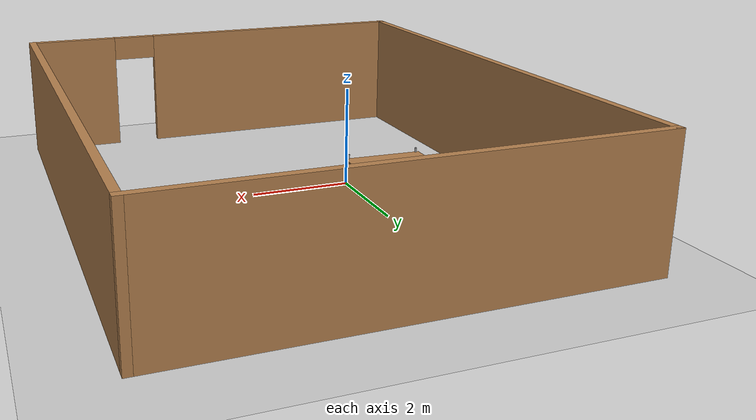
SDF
<sdf version="1.7">
 <world name="default">
  <light name="sun" type="directional">
   <pose>0 0 10 0 -0 0</pose>
   <diffuse>0.8 0.8 0.8 1</diffuse>
   <specular>0.2 0.2 0.2 1</specular>
   <attenuation>
    <range>1000</range>
    <constant>0.9</constant>
    <linear>0.01</linear>
    <quadratic>0.001</quadratic>
   </attenuation>
   <direction>-0.5 0.1 -0.9</direction>
   <spot><inner_angle>0</inner_angle><outer_angle>0</outer_angle><falloff>0</falloff></spot>
  </light>
  <model name="ground_plane">
   <static>1</static>
   <link name="link">
    <collision name="collision">
     <geometry><plane><normal>0 0 1</normal><size>100 100</size></plane></geometry>
     <surface><friction><ode><mu>100</mu><mu2>50</mu2></ode></friction></surface>
    </collision>
    <visual name="visual">
     <cast_shadows>0</cast_shadows>
     <geometry><plane><normal>0 0 1</normal><size>100 100</size></plane></geometry>
     <material>
      <script><uri>file://media/materials/scripts/gazebo.material</uri><name>Gazebo/Grey</name></script>
     </material>
    </visual>
   </link>
  </model>
  <gravity>0 0 -9.8</gravity>
  <magnetic_field>6e-06 2.3e-05 -4.2e-05</magnetic_field>
  <atmosphere type="adiabatic"/>
  <physics type="ode">
   <max_step_size>0.001</max_step_size>
   <real_time_factor>1</real_time_factor>
   <real_time_update_rate>1000</real_time_update_rate>
  </physics>
  <scene><ambient>0.4 0.4 0.4 1</ambient><background>0.7 0.7 0.7 1</background><shadows>1</shadows></scene>
  <audio><device>default</device></audio>
  <spherical_coordinates>
   <surface_model>EARTH_WGS84</surface_model>
   <latitude_deg>0</latitude_deg>
   <longitude_deg>0</longitude_deg>
   <elevation>0</elevation>
   <heading_deg>0</heading_deg>
  </spherical_coordinates>
  <model name="warehouse_pallet">
   <link name="warehouse_pallet::link">
    <pose>0 0 -0 0 -0 1.57</pose>
    <inertial>
     <inertia>
      <ixx>0.0267042</ixx>
      <ixy>0</ixy>
      <ixz>0</ixz>
      <iyy>0.0937875</iyy>
      <iyz>0</iyz>
      <izz>0.120417</izz>
     </inertia>
     <mass>0.5</mass>
    </inertial>
    <visual name="holding1_visual">
     <pose>0 0.39 0.45 0 -0 0</pose>
     <geometry><box><size>0.75 0.02 0.05</size></box></geometry>
     <material>
      <script><uri>file://media/materials/scripts/gazebo.material</uri><name>Gazebo/Grey</name></script>
      <shader type="pixel"><normal_map>__default__</normal_map></shader>
      <ambient>0.3 0.3 0.3 1</ambient>
      <diffuse>0.7 0.7 0.7 1</diffuse>
      <specular>0.01 0.01 0.01 1</specular>
      <emissive>0 0 0 1</emissive>
     </material>
    </visual>
    <visual name="front_left_leg">
     <pose>0.68 0.38 0.5 0 -0 0</pose>
     <geometry><cylinder><radius>0.02</radius><length>1.2</length></cylinder></geometry>
     <material>
      <script><uri>file://media/materials/scripts/gazebo.material</uri><name>Gazebo/Grey</name></script>
      <shader type="pixel"><normal_map>__default__</normal_map></shader>
      <ambient>0.3 0.3 0.3 1</ambient>
      <diffuse>0.7 0.7 0.7 1</diffuse>
      <specular>0.01 0.01 0.01 1</specular>
      <emissive>0 0 0 1</emissive>
     </material>
    </visual>
    <visual name="front_right_leg">
     <pose>0.68 -0.38 0.5 0 -0 0</pose>
     <geometry><cylinder><radius>0.02</radius><length>1.2</length></cylinder></geometry>
     <material>
      <script><uri>file://media/materials/scripts/gazebo.material</uri><name>Gazebo/Grey</name></script>
      <shader type="pixel"><normal_map>__default__</normal_map></shader>
      <ambient>0.3 0.3 0.3 1</ambient>
      <diffuse>0.7 0.7 0.7 1</diffuse>
      <specular>0.01 0.01 0.01 1</specular>
      <emissive>0 0 0 1</emissive>
     </material>
    </visual>
    <visual name="back_right_leg">
     <pose>-0.68 -0.38 0.5 0 -0 0</pose>
     <geometry><cylinder><radius>0.02</radius><length>1.2</length></cylinder></geometry>
     <material>
      <script><uri>file://media/materials/scripts/gazebo.material</uri><name>Gazebo/Grey</name></script>
      <shader type="pixel"><normal_map>__default__</normal_map></shader>
      <ambient>0.3 0.3 0.3 1</ambient>
      <diffuse>0.7 0.7 0.7 1</diffuse>
      <specular>0.01 0.01 0.01 1</specular>
      <emissive>0 0 0 1</emissive>
     </material>
    </visual>
    <visual name="back_left_leg">
     <pose>-0.68 0.38 0.5 0 -0 0</pose>
     <geometry><cylinder><radius>0.02</radius><length>1.2</length></cylinder></geometry>
     <material>
      <script><uri>file://media/materials/scripts/gazebo.material</uri><name>Gazebo/Grey</name></script>
      <shader type="pixel"><normal_map>__default__</normal_map></shader>
      <ambient>0.3 0.3 0.3 1</ambient>
      <diffuse>0.7 0.7 0.7 1</diffuse>
      <specular>0.01 0.01 0.01 1</specular>
      <emissive>0 0 0 1</emissive>
     </material>
    </visual>
    <visual name="visual1">
     <pose>0 0 0.45 0 -0 0</pose>
     <geometry><box><size>1.5 0.8 0.03</size></box></geometry>
     <material>
      <script><uri>file://media/materials/scripts/gazebo.material</uri><name>Gazebo/Wood</name></script>
      <shader type="pixel"><normal_map>__default__</normal_map></shader>
      <ambient>1 1 1 1</ambient>
      <diffuse>1 1 1 1</diffuse>
      <specular>0.2 0.2 0.2 1</specular>
      <emissive>0 0 0 1</emissive>
     </material>
    </visual>
    <visual name="holding2_visual">
     <pose>0 -0.39 0.45 0 -0 0</pose>
     <geometry><box><size>1.5 0.02 0.05</size></box></geometry>
     <material>
      <script><uri>file://media/materials/scripts/gazebo.material</uri><name>Gazebo/Grey</name></script>
      <shader type="pixel"><normal_map>__default__</normal_map></shader>
      <ambient>0.3 0.3 0.3 1</ambient>
      <diffuse>0.7 0.7 0.7 1</diffuse>
      <specular>0.01 0.01 0.01 1</specular>
      <emissive>0 0 0 1</emissive>
     </material>
    </visual>
    <visual name="holding3_visual">
     <pose>0.735 0 0.45 0 -0 1.57</pose>
     <geometry><box><size>0.8 0.02 0.05</size></box></geometry>
     <material>
      <script><uri>file://media/materials/scripts/gazebo.material</uri><name>Gazebo/Grey</name></script>
      <shader type="pixel"><normal_map>__default__</normal_map></shader>
      <ambient>0.3 0.3 0.3 1</ambient>
      <diffuse>0.7 0.7 0.7 1</diffuse>
      <specular>0.01 0.01 0.01 1</specular>
      <emissive>0 0 0 1</emissive>
     </material>
    </visual>
    <visual name="holding4_visual">
     <pose>-0.735 0 0.45 0 -0 1.57</pose>
     <geometry><box><size>0.8 0.02 0.05</size></box></geometry>
     <material>
      <script><uri>file://media/materials/scripts/gazebo.material</uri><name>Gazebo/Grey</name></script>
      <shader type="pixel"><normal_map>__default__</normal_map></shader>
      <ambient>0.3 0.3 0.3 1</ambient>
      <diffuse>0.7 0.7 0.7 1</diffuse>
      <specular>0.01 0.01 0.01 1</specular>
      <emissive>0 0 0 1</emissive>
     </material>
    </visual>
    <visual name="visual2">
     <pose>0 0 0.6 0 -0 0</pose>
     <geometry><box><size>1.5 0.8 0.03</size></box></geometry>
     <material>
      <script><uri>file://media/materials/scripts/gazebo.material</uri><name>Gazebo/Wood</name></script>
      <shader type="pixel"><normal_map>__default__</normal_map></shader>
      <ambient>1 1 1 1</ambient>
      <diffuse>1 1 1 1</diffuse>
      <specular>0.2 0.2 0.2 1</specular>
      <emissive>0 0 0 1</emissive>
     </material>
    </visual>
    <visual name="visual3">
     <pose>0 0 1 0 -0 0</pose>
     <geometry><box><size>1.5 0.8 0.03</size></box></geometry>
     <material>
      <script><uri>file://media/materials/scripts/gazebo.material</uri><name>Gazebo/Wood</name></script>
      <shader type="pixel"><normal_map>__default__</normal_map></shader>
      <ambient>1 1 1 1</ambient>
      <diffuse>1 1 1 1</diffuse>
      <specular>0.2 0.2 0.2 1</specular>
      <emissive>0 0 0 1</emissive>
     </material>
    </visual>
    <collision name="surface1">
     <pose>0 0 0.45 0 -0 0</pose>
     <geometry><box><size>1.5 0.8 0.03</size></box></geometry>
     <surface>
      <friction>
       <ode><mu>20</mu><mu2>20</mu2><fdir1>0 0 0</fdir1><slip1>0</slip1><slip2>0</slip2></ode>
       <torsional>
        <coefficient>1</coefficient>
        <patch_radius>0</patch_radius>
        <surface_radius>0</surface_radius>
        <use_patch_radius>1</use_patch_radius>
        <ode><slip>0</slip></ode>
       </torsional>
      </friction>
      <bounce><restitution_coefficient>0</restitution_coefficient><threshold>1e+06</threshold></bounce>
      <contact>
       <collide_without_contact>0</collide_without_contact>
       <collide_without_contact_bitmask>1</collide_without_contact_bitmask>
       <collide_bitmask>1</collide_bitmask>
       <ode>
        <soft_cfm>0</soft_cfm>
        <soft_erp>0.2</soft_erp>
        <kp>1e+13</kp>
        <kd>1</kd>
        <max_vel>0.01</max_vel>
        <min_depth>0</min_depth>
       </ode>
       <bullet>
        <split_impulse>1</split_impulse>
        <split_impulse_penetration_threshold>-0.01</split_impulse_penetration_threshold>
        <soft_cfm>0</soft_cfm>
        <soft_erp>0.2</soft_erp>
        <kp>1e+13</kp>
        <kd>1</kd>
       </bullet>
      </contact>
     </surface>
    </collision>
    <collision name="holding1_collision">
     <pose>0 0.39 0.45 0 -0 0</pose>
     <geometry><box><size>1.5 0.02 0.05</size></box></geometry>
     <surface>
      <friction>
       <ode><mu>1e+09</mu><mu2>1e+09</mu2><fdir1>0 0 0</fdir1><slip1>0</slip1><slip2>0</slip2></ode>
       <torsional>
        <coefficient>1</coefficient>
        <patch_radius>0</patch_radius>
        <surface_radius>0</surface_radius>
        <use_patch_radius>1</use_patch_radius>
        <ode><slip>0</slip></ode>
       </torsional>
      </friction>
      <bounce><restitution_coefficient>0</restitution_coefficient><threshold>1e+06</threshold></bounce>
      <contact>
       <collide_without_contact>0</collide_without_contact>
       <collide_without_contact_bitmask>1</collide_without_contact_bitmask>
       <collide_bitmask>1</collide_bitmask>
       <ode>
        <soft_cfm>0</soft_cfm>
        <soft_erp>0.2</soft_erp>
        <kp>1e+13</kp>
        <kd>1</kd>
        <max_vel>0.01</max_vel>
        <min_depth>0</min_depth>
       </ode>
       <bullet>
        <split_impulse>1</split_impulse>
        <split_impulse_penetration_threshold>-0.01</split_impulse_penetration_threshold>
        <soft_cfm>0</soft_cfm>
        <soft_erp>0.2</soft_erp>
        <kp>1e+13</kp>
        <kd>1</kd>
       </bullet>
      </contact>
     </surface>
    </collision>
    <collision name="holding2_collision">
     <pose>0 -0.39 0.45 0 -0 0</pose>
     <geometry><box><size>1.5 0.02 0.05</size></box></geometry>
     <surface>
      <friction>
       <ode><mu>1e+09</mu><mu2>1e+09</mu2><fdir1>0 0 0</fdir1><slip1>0</slip1><slip2>0</slip2></ode>
       <torsional>
        <coefficient>1</coefficient>
        <patch_radius>0</patch_radius>
        <surface_radius>0</surface_radius>
        <use_patch_radius>1</use_patch_radius>
        <ode><slip>0</slip></ode>
       </torsional>
      </friction>
      <bounce><restitution_coefficient>0</restitution_coefficient><threshold>1e+06</threshold></bounce>
      <contact>
       <collide_without_contact>0</collide_without_contact>
       <collide_without_contact_bitmask>1</collide_without_contact_bitmask>
       <collide_bitmask>1</collide_bitmask>
       <ode>
        <soft_cfm>0</soft_cfm>
        <soft_erp>0.2</soft_erp>
        <kp>1e+13</kp>
        <kd>1</kd>
        <max_vel>0.01</max_vel>
        <min_depth>0</min_depth>
       </ode>
       <bullet>
        <split_impulse>1</split_impulse>
        <split_impulse_penetration_threshold>-0.01</split_impulse_penetration_threshold>
        <soft_cfm>0</soft_cfm>
        <soft_erp>0.2</soft_erp>
        <kp>1e+13</kp>
        <kd>1</kd>
       </bullet>
      </contact>
     </surface>
    </collision>
    <collision name="holding3_collision">
     <pose>0.735 0 0.45 0 -0 1.57</pose>
     <geometry><box><size>0.8 0.02 0.05</size></box></geometry>
     <surface>
      <friction>
       <ode><mu>1e+09</mu><mu2>1e+09</mu2><fdir1>0 0 0</fdir1><slip1>0</slip1><slip2>0</slip2></ode>
       <torsional>
        <coefficient>1</coefficient>
        <patch_radius>0</patch_radius>
        <surface_radius>0</surface_radius>
        <use_patch_radius>1</use_patch_radius>
        <ode><slip>0</slip></ode>
       </torsional>
      </friction>
      <bounce><restitution_coefficient>0</restitution_coefficient><threshold>1e+06</threshold></bounce>
      <contact>
       <collide_without_contact>0</collide_without_contact>
       <collide_without_contact_bitmask>1</collide_without_contact_bitmask>
       <collide_bitmask>1</collide_bitmask>
       <ode>
        <soft_cfm>0</soft_cfm>
        <soft_erp>0.2</soft_erp>
        <kp>1e+13</kp>
        <kd>1</kd>
        <max_vel>0.01</max_vel>
        <min_depth>0</min_depth>
       </ode>
       <bullet>
        <split_impulse>1</split_impulse>
        <split_impulse_penetration_threshold>-0.01</split_impulse_penetration_threshold>
        <soft_cfm>0</soft_cfm>
        <soft_erp>0.2</soft_erp>
        <kp>1e+13</kp>
        <kd>1</kd>
       </bullet>
      </contact>
     </surface>
    </collision>
    <collision name="holding4_collision">
     <pose>-0.735 0 0.45 0 -0 1.57</pose>
     <geometry><box><size>0.8 0.02 0.05</size></box></geometry>
     <surface>
      <friction>
       <ode><mu>1e+09</mu><mu2>1e+09</mu2><fdir1>0 0 0</fdir1><slip1>0</slip1><slip2>0</slip2></ode>
       <torsional>
        <coefficient>1</coefficient>
        <patch_radius>0</patch_radius>
        <surface_radius>0</surface_radius>
        <use_patch_radius>1</use_patch_radius>
        <ode><slip>0</slip></ode>
       </torsional>
      </friction>
      <bounce><restitution_coefficient>0</restitution_coefficient><threshold>1e+06</threshold></bounce>
      <contact>
       <collide_without_contact>0</collide_without_contact>
       <collide_without_contact_bitmask>1</collide_without_contact_bitmask>
       <collide_bitmask>1</collide_bitmask>
       <ode>
        <soft_cfm>0</soft_cfm>
        <soft_erp>0.2</soft_erp>
        <kp>1e+13</kp>
        <kd>1</kd>
        <max_vel>0.01</max_vel>
        <min_depth>0</min_depth>
       </ode>
       <bullet>
        <split_impulse>1</split_impulse>
        <split_impulse_penetration_threshold>-0.01</split_impulse_penetration_threshold>
        <soft_cfm>0</soft_cfm>
        <soft_erp>0.2</soft_erp>
        <kp>1e+13</kp>
        <kd>1</kd>
       </bullet>
      </contact>
     </surface>
    </collision>
    <collision name="surface3">
     <pose>0 0 1 0 -0 0</pose>
     <geometry><box><size>1.5 0.8 0.03</size></box></geometry>
     <surface>
      <friction>
       <ode><mu>2.5</mu><mu2>2.5</mu2><fdir1>0 0 0</fdir1><slip1>0</slip1><slip2>0</slip2></ode>
       <torsional>
        <coefficient>1</coefficient>
        <patch_radius>0</patch_radius>
        <surface_radius>0</surface_radius>
        <use_patch_radius>1</use_patch_radius>
        <ode><slip>0</slip></ode>
       </torsional>
      </friction>
      <bounce><restitution_coefficient>0</restitution_coefficient><threshold>1e+06</threshold></bounce>
      <contact>
       <collide_without_contact>0</collide_without_contact>
       <collide_without_contact_bitmask>1</collide_without_contact_bitmask>
       <collide_bitmask>1</collide_bitmask>
       <ode>
        <soft_cfm>0</soft_cfm>
        <soft_erp>0.2</soft_erp>
        <kp>1e+13</kp>
        <kd>1</kd>
        <max_vel>0.01</max_vel>
        <min_depth>0</min_depth>
       </ode>
       <bullet>
        <split_impulse>1</split_impulse>
        <split_impulse_penetration_threshold>-0.01</split_impulse_penetration_threshold>
        <soft_cfm>0</soft_cfm>
        <soft_erp>0.2</soft_erp>
        <kp>1e+13</kp>
        <kd>1</kd>
       </bullet>
      </contact>
     </surface>
    </collision>
    <collision name="surface2">
     <pose>0 0 0.6 0 -0 0</pose>
     <geometry><box><size>1.5 0.8 0.03</size></box></geometry>
     <surface>
      <friction>
       <ode><mu>2.5</mu><mu2>2.5</mu2><fdir1>0 0 0</fdir1><slip1>0</slip1><slip2>0</slip2></ode>
       <torsional>
        <coefficient>1</coefficient>
        <patch_radius>0</patch_radius>
        <surface_radius>0</surface_radius>
        <use_patch_radius>1</use_patch_radius>
        <ode><slip>0</slip></ode>
       </torsional>
      </friction>
      <bounce><restitution_coefficient>0</restitution_coefficient><threshold>1e+06</threshold></bounce>
      <contact>
       <collide_without_contact>0</collide_without_contact>
       <collide_without_contact_bitmask>1</collide_without_contact_bitmask>
       <collide_bitmask>1</collide_bitmask>
       <ode>
        <soft_cfm>0</soft_cfm>
        <soft_erp>0.2</soft_erp>
        <kp>1e+13</kp>
        <kd>1</kd>
        <max_vel>0.01</max_vel>
        <min_depth>0</min_depth>
       </ode>
       <bullet>
        <split_impulse>1</split_impulse>
        <split_impulse_penetration_threshold>-0.01</split_impulse_penetration_threshold>
        <soft_cfm>0</soft_cfm>
        <soft_erp>0.2</soft_erp>
        <kp>1e+13</kp>
        <kd>1</kd>
       </bullet>
      </contact>
     </surface>
    </collision>
    <collision name="front_right_leg">
     <pose>0.68 -0.38 0.5 0 -0 0</pose>
     <geometry><cylinder><radius>0.02</radius><length>1</length></cylinder></geometry>
     <surface>
      <friction>
       <ode><mu>1</mu><mu2>1.2</mu2><fdir1>0 0 0</fdir1><slip1>0</slip1><slip2>0</slip2></ode>
       <torsional>
        <coefficient>1</coefficient>
        <patch_radius>0</patch_radius>
        <surface_radius>0</surface_radius>
        <use_patch_radius>1</use_patch_radius>
        <ode><slip>0</slip></ode>
       </torsional>
      </friction>
      <bounce><restitution_coefficient>0</restitution_coefficient><threshold>1e+06</threshold></bounce>
      <contact>
       <collide_without_contact>0</collide_without_contact>
       <collide_without_contact_bitmask>1</collide_without_contact_bitmask>
       <collide_bitmask>1</collide_bitmask>
       <ode>
        <soft_cfm>0</soft_cfm>
        <soft_erp>0.2</soft_erp>
        <kp>1e+13</kp>
        <kd>1</kd>
        <max_vel>0.01</max_vel>
        <min_depth>0</min_depth>
       </ode>
       <bullet>
        <split_impulse>1</split_impulse>
        <split_impulse_penetration_threshold>-0.01</split_impulse_penetration_threshold>
        <soft_cfm>0</soft_cfm>
        <soft_erp>0.2</soft_erp>
        <kp>1e+13</kp>
        <kd>1</kd>
       </bullet>
      </contact>
     </surface>
    </collision>
    <collision name="back_right_leg">
     <pose>-0.68 -0.38 0.5 0 -0 0</pose>
     <geometry><cylinder><radius>0.02</radius><length>1.2</length></cylinder></geometry>
     <surface>
      <friction>
       <ode><mu>1</mu><mu2>1</mu2><fdir1>0 0 0</fdir1><slip1>0</slip1><slip2>0</slip2></ode>
       <torsional>
        <coefficient>1</coefficient>
        <patch_radius>0</patch_radius>
        <surface_radius>0</surface_radius>
        <use_patch_radius>1</use_patch_radius>
        <ode><slip>0</slip></ode>
       </torsional>
      </friction>
      <bounce><restitution_coefficient>0</restitution_coefficient><threshold>1e+06</threshold></bounce>
      <contact>
       <collide_without_contact>0</collide_without_contact>
       <collide_without_contact_bitmask>1</collide_without_contact_bitmask>
       <collide_bitmask>1</collide_bitmask>
       <ode>
        <soft_cfm>0</soft_cfm>
        <soft_erp>0.2</soft_erp>
        <kp>1e+13</kp>
        <kd>1</kd>
        <max_vel>0.01</max_vel>
        <min_depth>0</min_depth>
       </ode>
       <bullet>
        <split_impulse>1</split_impulse>
        <split_impulse_penetration_threshold>-0.01</split_impulse_penetration_threshold>
        <soft_cfm>0</soft_cfm>
        <soft_erp>0.2</soft_erp>
        <kp>1e+13</kp>
        <kd>1</kd>
       </bullet>
      </contact>
     </surface>
    </collision>
    <collision name="front_left_leg">
     <pose>0.68 0.38 0.5 0 -0 0</pose>
     <geometry><cylinder><radius>0.02</radius><length>1.2</length></cylinder></geometry>
     <surface>
      <friction>
       <ode><mu>1</mu><mu2>1</mu2><fdir1>0 0 0</fdir1><slip1>0</slip1><slip2>0</slip2></ode>
       <torsional>
        <coefficient>1</coefficient>
        <patch_radius>0</patch_radius>
        <surface_radius>0</surface_radius>
        <use_patch_radius>1</use_patch_radius>
        <ode><slip>0</slip></ode>
       </torsional>
      </friction>
      <bounce><restitution_coefficient>0</restitution_coefficient><threshold>1e+06</threshold></bounce>
      <contact>
       <collide_without_contact>0</collide_without_contact>
       <collide_without_contact_bitmask>1</collide_without_contact_bitmask>
       <collide_bitmask>1</collide_bitmask>
       <ode>
        <soft_cfm>0</soft_cfm>
        <soft_erp>0.2</soft_erp>
        <kp>1e+13</kp>
        <kd>1</kd>
        <max_vel>0.01</max_vel>
        <min_depth>0</min_depth>
       </ode>
       <bullet>
        <split_impulse>1</split_impulse>
        <split_impulse_penetration_threshold>-0.01</split_impulse_penetration_threshold>
        <soft_cfm>0</soft_cfm>
        <soft_erp>0.2</soft_erp>
        <kp>1e+13</kp>
        <kd>1</kd>
       </bullet>
      </contact>
     </surface>
    </collision>
    <collision name="back_left_leg">
     <pose>-0.68 0.38 0.5 0 -0 0</pose>
     <geometry><cylinder><radius>0.02</radius><length>1.2</length></cylinder></geometry>
     <surface>
      <friction>
       <ode><mu>1</mu><mu2>1</mu2><fdir1>0 0 0</fdir1><slip1>0</slip1><slip2>0</slip2></ode>
       <torsional>
        <coefficient>1</coefficient>
        <patch_radius>0</patch_radius>
        <surface_radius>0</surface_radius>
        <use_patch_radius>1</use_patch_radius>
        <ode><slip>0</slip></ode>
       </torsional>
      </friction>
      <bounce><restitution_coefficient>0</restitution_coefficient><threshold>1e+06</threshold></bounce>
      <contact>
       <collide_without_contact>0</collide_without_contact>
       <collide_without_contact_bitmask>1</collide_without_contact_bitmask>
       <collide_bitmask>1</collide_bitmask>
       <ode>
        <soft_cfm>0</soft_cfm>
        <soft_erp>0.2</soft_erp>
        <kp>1e+13</kp>
        <kd>1</kd>
        <max_vel>0.01</max_vel>
        <min_depth>0</min_depth>
       </ode>
       <bullet>
        <split_impulse>1</split_impulse>
        <split_impulse_penetration_threshold>-0.01</split_impulse_penetration_threshold>
        <soft_cfm>0</soft_cfm>
        <soft_erp>0.2</soft_erp>
        <kp>1e+13</kp>
        <kd>1</kd>
       </bullet>
      </contact>
     </surface>
    </collision>
   </link>
   <static>0</static>
   <pose>0.015009 2.07401 0.099966 -0.000129 0.00034 1.53678</pose>
  </model>
  <model name="Untitled15">
   <pose>1.36451 0.633597 0 0 -0 0</pose>
   <link name="Wall_10">
    <pose>-0 -5.3 0 0 -0 0</pose>
    <visual name="Wall_10_Visual_0">
     <pose>-1.39901 0 1.25 0 -0 0</pose>
     <geometry><box><size>5.95197 0.15 2.5</size></box></geometry>
     <material>
      <script><uri>file://media/materials/scripts/gazebo.material</uri><name>Gazebo/Wood</name></script>
      <ambient>1 1 1 1</ambient>
     </material>
     <meta><layer>0</layer></meta>
    </visual>
    <collision name="Wall_10_Collision_0">
     <geometry><box><size>5.95197 0.15 2.5</size></box></geometry>
     <pose>-1.39901 0 1.25 0 -0 0</pose>
    </collision>
    <visual name="Wall_10_Visual_1">
     <pose>3.42598 0 1.25 0 -0 0</pose>
     <geometry><box><size>1.89803 0.15 2.5</size></box></geometry>
     <material>
      <script><uri>file://media/materials/scripts/gazebo.material</uri><name>Gazebo/Wood</name></script>
      <ambient>1 1 1 1</ambient>
     </material>
     <meta><layer>0</layer></meta>
    </visual>
    <collision name="Wall_10_Collision_1">
     <geometry><box><size>1.89803 0.15 2.5</size></box></geometry>
     <pose>3.42598 0 1.25 0 -0 0</pose>
    </collision>
    <visual name="Wall_10_Visual_2">
     <pose>2.02697 0 2.25 0 -0 0</pose>
     <geometry><box><size>0.9 0.15 0.5</size></box></geometry>
     <material>
      <script><uri>file://media/materials/scripts/gazebo.material</uri><name>Gazebo/Wood</name></script>
      <ambient>1 1 1 1</ambient>
     </material>
     <meta><layer>0</layer></meta>
    </visual>
    <collision name="Wall_10_Collision_2">
     <geometry><box><size>0.9 0.15 0.5</size></box></geometry>
     <pose>2.02697 0 2.25 0 -0 0</pose>
    </collision>
   </link>
   <link name="Wall_5">
    <collision name="Wall_5_Collision">
     <geometry><box><size>10.75 0.15 2.5</size></box></geometry>
     <pose>0 0 1.25 0 -0 0</pose>
    </collision>
    <visual name="Wall_5_Visual">
     <pose>0 0 1.25 0 -0 0</pose>
     <geometry><box><size>10.75 0.15 2.5</size></box></geometry>
     <material>
      <script><uri>file://media/materials/scripts/gazebo.material</uri><name>Gazebo/Wood</name></script>
      <ambient>1 1 1 1</ambient>
     </material>
     <meta><layer>0</layer></meta>
    </visual>
    <pose>4.3 0 0 0 -0 1.5708</pose>
   </link>
   <link name="Wall_6">
    <collision name="Wall_6_Collision">
     <geometry><box><size>8.75 0.15 2.5</size></box></geometry>
     <pose>0 0 1.25 0 -0 0</pose>
    </collision>
    <visual name="Wall_6_Visual">
     <pose>0 0 1.25 0 -0 0</pose>
     <geometry><box><size>8.75 0.15 2.5</size></box></geometry>
     <material>
      <script><uri>file://media/materials/scripts/gazebo.material</uri><name>Gazebo/Wood</name></script>
      <ambient>1 1 1 1</ambient>
     </material>
     <meta><layer>0</layer></meta>
    </visual>
    <pose>-0 5.3 0 0 -0 3.14159</pose>
   </link>
   <link name="Wall_7">
    <collision name="Wall_7_Collision">
     <geometry><box><size>10.75 0.15 2.5</size></box></geometry>
     <pose>0 0 1.25 0 -0 0</pose>
    </collision>
    <visual name="Wall_7_Visual">
     <pose>0 0 1.25 0 -0 0</pose>
     <geometry><box><size>10.75 0.15 2.5</size></box></geometry>
     <material>
      <script><uri>file://media/materials/scripts/gazebo.material</uri><name>Gazebo/Wood</name></script>
      <ambient>1 1 1 1</ambient>
     </material>
     <meta><layer>0</layer></meta>
    </visual>
    <pose>-4.3 0 0 0 -0 -1.5708</pose>
   </link>
   <static>1</static>
  </model>
 </world>
</sdf>
